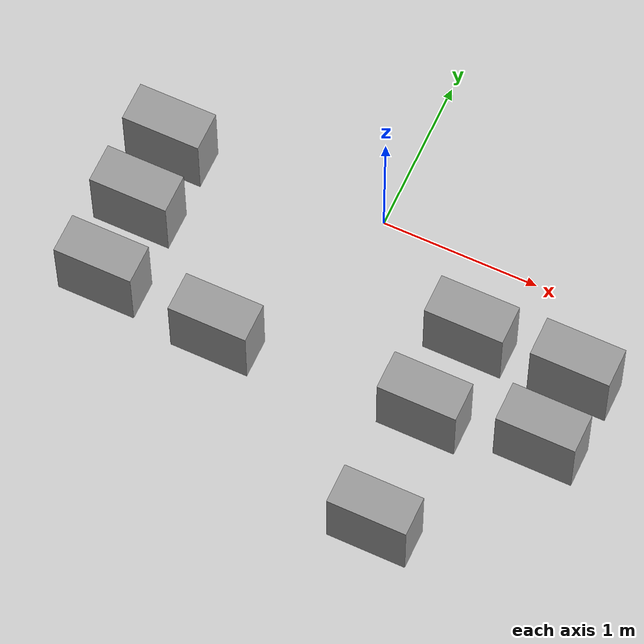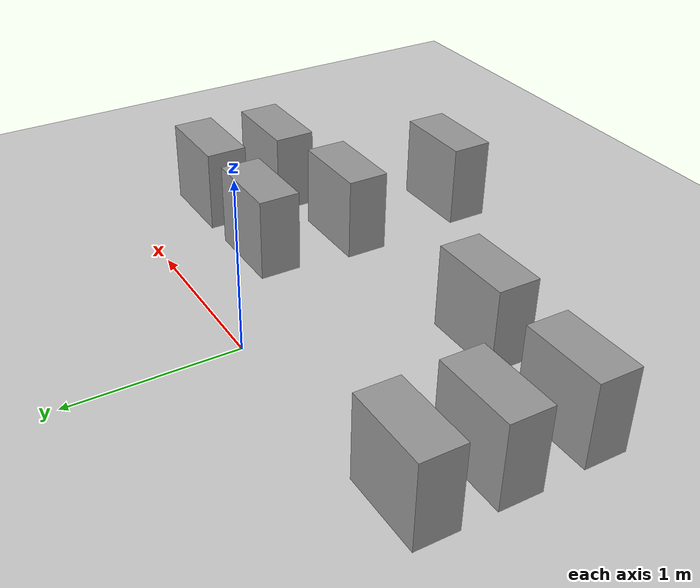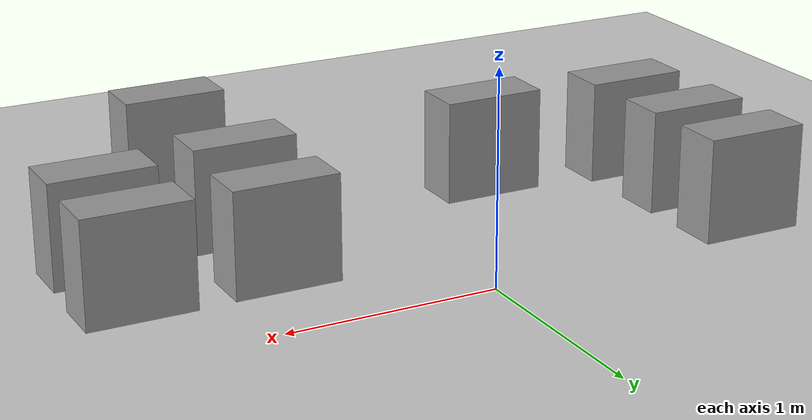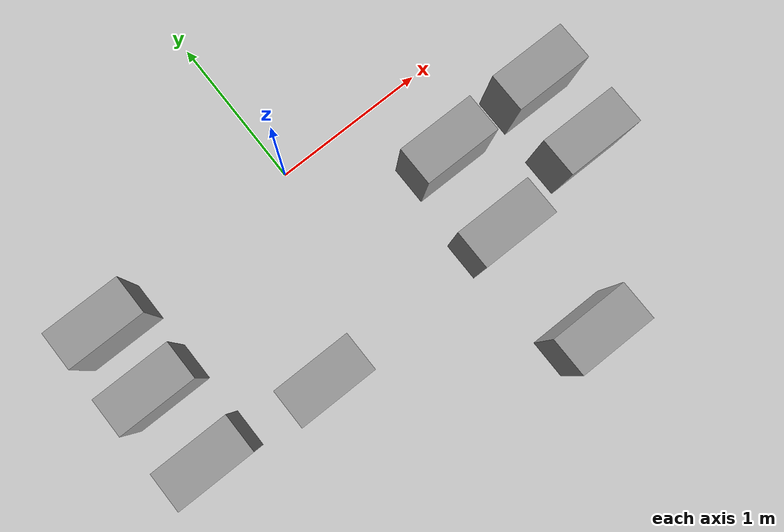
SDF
<sdf version="1.7">
 <world name="default">
  <model name="ground_plane">
   <static>1</static>
   <link name="link">
    <collision name="collision">
     <geometry><plane><normal>0 0 1</normal><size>100 100</size></plane></geometry>
     <surface>
      <contact><collide_bitmask>65535</collide_bitmask></contact>
      <friction><ode><mu>100</mu><mu2>50</mu2></ode></friction>
     </surface>
    </collision>
    <visual name="visual">
     <cast_shadows>0</cast_shadows>
     <geometry><plane><normal>0 0 1</normal><size>100 100</size></plane></geometry>
     <material>
      <script><uri>file://media/materials/scripts/gazebo.material</uri><name>Gazebo/Grey</name></script>
     </material>
    </visual>
   </link>
  </model>
  <model name="box_race_car_clone_20">
   <link name="link">
    <inertial>
     <mass>10</mass>
     <inertia>
      <ixx>0.260417</ixx>
      <ixy>0</ixy>
      <ixz>0</ixz>
      <iyy>0.416667</iyy>
      <iyz>0</iyz>
      <izz>0.260417</izz>
     </inertia>
    </inertial>
    <visual name="visual">
     <geometry><box><size>0.5 0.25 0.5</size></box></geometry>
     <material>
      <script><name>Gazebo/Grey</name><uri>file://media/materials/scripts/gazebo.material</uri></script>
      <shader type="pixel"><normal_map>__default__</normal_map></shader>
      <ambient>0.3 0.3 0.3 1</ambient>
      <diffuse>0.7 0.7 0.7 1</diffuse>
      <specular>0.01 0.01 0.01 1</specular>
      <emissive>0 0 0 1</emissive>
     </material>
    </visual>
    <collision name="collision">
     <geometry><box><size>0.5 0.25 0.5</size></box></geometry>
     <surface>
      <friction>
       <ode><mu>1</mu><mu2>1</mu2><fdir1>0 0 0</fdir1><slip1>0</slip1><slip2>0</slip2></ode>
       <torsional>
        <coefficient>1</coefficient>
        <patch_radius>0</patch_radius>
        <surface_radius>0</surface_radius>
        <use_patch_radius>1</use_patch_radius>
        <ode><slip>0</slip></ode>
       </torsional>
      </friction>
      <bounce><restitution_coefficient>0</restitution_coefficient><threshold>1e+06</threshold></bounce>
      <contact>
       <collide_without_contact>0</collide_without_contact>
       <collide_without_contact_bitmask>1</collide_without_contact_bitmask>
       <collide_bitmask>1</collide_bitmask>
       <ode>
        <soft_cfm>0</soft_cfm>
        <soft_erp>0.2</soft_erp>
        <kp>1e+13</kp>
        <kd>1</kd>
        <max_vel>0.01</max_vel>
        <min_depth>0</min_depth>
       </ode>
       <bullet>
        <split_impulse>1</split_impulse>
        <split_impulse_penetration_threshold>-0.01</split_impulse_penetration_threshold>
        <soft_cfm>0</soft_cfm>
        <soft_erp>0.2</soft_erp>
        <kp>1e+13</kp>
        <kd>1</kd>
       </bullet>
      </contact>
     </surface>
    </collision>
   </link>
   <static>0</static>
   <pose>-0.568656 -1.13771 0.25 0 -0 -2e-06</pose>
  </model>
  <model name="box_race_car_clone_20_clone_12">
   <link name="link">
    <inertial>
     <mass>10</mass>
     <inertia>
      <ixx>0.260417</ixx>
      <ixy>0</ixy>
      <ixz>0</ixz>
      <iyy>0.416667</iyy>
      <iyz>0</iyz>
      <izz>0.260417</izz>
     </inertia>
    </inertial>
    <visual name="visual">
     <geometry><box><size>0.5 0.25 0.5</size></box></geometry>
     <material>
      <script><name>Gazebo/Grey</name><uri>file://media/materials/scripts/gazebo.material</uri></script>
      <shader type="pixel"><normal_map>__default__</normal_map></shader>
      <ambient>0.3 0.3 0.3 1</ambient>
      <diffuse>0.7 0.7 0.7 1</diffuse>
      <specular>0.01 0.01 0.01 1</specular>
      <emissive>0 0 0 1</emissive>
     </material>
    </visual>
    <collision name="collision">
     <geometry><box><size>0.5 0.25 0.5</size></box></geometry>
     <surface>
      <friction>
       <ode><mu>1</mu><mu2>1</mu2><fdir1>0 0 0</fdir1><slip1>0</slip1><slip2>0</slip2></ode>
       <torsional>
        <coefficient>1</coefficient>
        <patch_radius>0</patch_radius>
        <surface_radius>0</surface_radius>
        <use_patch_radius>1</use_patch_radius>
        <ode><slip>0</slip></ode>
       </torsional>
      </friction>
      <bounce><restitution_coefficient>0</restitution_coefficient><threshold>1e+06</threshold></bounce>
      <contact>
       <collide_without_contact>0</collide_without_contact>
       <collide_without_contact_bitmask>1</collide_without_contact_bitmask>
       <collide_bitmask>1</collide_bitmask>
       <ode>
        <soft_cfm>0</soft_cfm>
        <soft_erp>0.2</soft_erp>
        <kp>1e+13</kp>
        <kd>1</kd>
        <max_vel>0.01</max_vel>
        <min_depth>0</min_depth>
       </ode>
       <bullet>
        <split_impulse>1</split_impulse>
        <split_impulse_penetration_threshold>-0.01</split_impulse_penetration_threshold>
        <soft_cfm>0</soft_cfm>
        <soft_erp>0.2</soft_erp>
        <kp>1e+13</kp>
        <kd>1</kd>
       </bullet>
      </contact>
     </surface>
    </collision>
   </link>
   <static>0</static>
   <pose>-1.36143 -0.11935 0.25 0 -0 -2e-06</pose>
  </model>
  <model name="box_race_car_clone_20_clone_13">
   <link name="link">
    <inertial>
     <mass>10</mass>
     <inertia>
      <ixx>0.260417</ixx>
      <ixy>0</ixy>
      <ixz>0</ixz>
      <iyy>0.416667</iyy>
      <iyz>0</iyz>
      <izz>0.260417</izz>
     </inertia>
    </inertial>
    <visual name="visual">
     <geometry><box><size>0.5 0.25 0.5</size></box></geometry>
     <material>
      <script><name>Gazebo/Grey</name><uri>file://media/materials/scripts/gazebo.material</uri></script>
      <shader type="pixel"><normal_map>__default__</normal_map></shader>
      <ambient>0.3 0.3 0.3 1</ambient>
      <diffuse>0.7 0.7 0.7 1</diffuse>
      <specular>0.01 0.01 0.01 1</specular>
      <emissive>0 0 0 1</emissive>
     </material>
    </visual>
    <collision name="collision">
     <geometry><box><size>0.5 0.25 0.5</size></box></geometry>
     <surface>
      <friction>
       <ode><mu>1</mu><mu2>1</mu2><fdir1>0 0 0</fdir1><slip1>0</slip1><slip2>0</slip2></ode>
       <torsional>
        <coefficient>1</coefficient>
        <patch_radius>0</patch_radius>
        <surface_radius>0</surface_radius>
        <use_patch_radius>1</use_patch_radius>
        <ode><slip>0</slip></ode>
       </torsional>
      </friction>
      <bounce><restitution_coefficient>0</restitution_coefficient><threshold>1e+06</threshold></bounce>
      <contact>
       <collide_without_contact>0</collide_without_contact>
       <collide_without_contact_bitmask>1</collide_without_contact_bitmask>
       <collide_bitmask>1</collide_bitmask>
       <ode>
        <soft_cfm>0</soft_cfm>
        <soft_erp>0.2</soft_erp>
        <kp>1e+13</kp>
        <kd>1</kd>
        <max_vel>0.01</max_vel>
        <min_depth>0</min_depth>
       </ode>
       <bullet>
        <split_impulse>1</split_impulse>
        <split_impulse_penetration_threshold>-0.01</split_impulse_penetration_threshold>
        <soft_cfm>0</soft_cfm>
        <soft_erp>0.2</soft_erp>
        <kp>1e+13</kp>
        <kd>1</kd>
       </bullet>
      </contact>
     </surface>
    </collision>
   </link>
   <static>0</static>
   <pose>-1.35625 -0.573354 0.25 0 -0 -2e-06</pose>
  </model>
  <model name="box_race_car_clone_20_clone_14">
   <link name="link">
    <inertial>
     <mass>10</mass>
     <inertia>
      <ixx>0.260417</ixx>
      <ixy>0</ixy>
      <ixz>0</ixz>
      <iyy>0.416667</iyy>
      <iyz>0</iyz>
      <izz>0.260417</izz>
     </inertia>
    </inertial>
    <visual name="visual">
     <geometry><box><size>0.5 0.25 0.5</size></box></geometry>
     <material>
      <script><name>Gazebo/Grey</name><uri>file://media/materials/scripts/gazebo.material</uri></script>
      <shader type="pixel"><normal_map>__default__</normal_map></shader>
      <ambient>0.3 0.3 0.3 1</ambient>
      <diffuse>0.7 0.7 0.7 1</diffuse>
      <specular>0.01 0.01 0.01 1</specular>
      <emissive>0 0 0 1</emissive>
     </material>
    </visual>
    <collision name="collision">
     <geometry><box><size>0.5 0.25 0.5</size></box></geometry>
     <surface>
      <friction>
       <ode><mu>1</mu><mu2>1</mu2><fdir1>0 0 0</fdir1><slip1>0</slip1><slip2>0</slip2></ode>
       <torsional>
        <coefficient>1</coefficient>
        <patch_radius>0</patch_radius>
        <surface_radius>0</surface_radius>
        <use_patch_radius>1</use_patch_radius>
        <ode><slip>0</slip></ode>
       </torsional>
      </friction>
      <bounce><restitution_coefficient>0</restitution_coefficient><threshold>1e+06</threshold></bounce>
      <contact>
       <collide_without_contact>0</collide_without_contact>
       <collide_without_contact_bitmask>1</collide_without_contact_bitmask>
       <collide_bitmask>1</collide_bitmask>
       <ode>
        <soft_cfm>0</soft_cfm>
        <soft_erp>0.2</soft_erp>
        <kp>1e+13</kp>
        <kd>1</kd>
        <max_vel>0.01</max_vel>
        <min_depth>0</min_depth>
       </ode>
       <bullet>
        <split_impulse>1</split_impulse>
        <split_impulse_penetration_threshold>-0.01</split_impulse_penetration_threshold>
        <soft_cfm>0</soft_cfm>
        <soft_erp>0.2</soft_erp>
        <kp>1e+13</kp>
        <kd>1</kd>
       </bullet>
      </contact>
     </surface>
    </collision>
   </link>
   <static>0</static>
   <pose>-1.34277 -1.07695 0.25 0 -0 -2e-06</pose>
  </model>
  <model name="box_race_car_clone_20_clone_20">
   <link name="link">
    <inertial>
     <mass>10</mass>
     <inertia>
      <ixx>0.260417</ixx>
      <ixy>0</ixy>
      <ixz>0</ixz>
      <iyy>0.416667</iyy>
      <iyz>0</iyz>
      <izz>0.260417</izz>
     </inertia>
    </inertial>
    <visual name="visual">
     <geometry><box><size>0.5 0.25 0.5</size></box></geometry>
     <material>
      <script><name>Gazebo/Grey</name><uri>file://media/materials/scripts/gazebo.material</uri></script>
      <shader type="pixel"><normal_map>__default__</normal_map></shader>
      <ambient>0.3 0.3 0.3 1</ambient>
      <diffuse>0.7 0.7 0.7 1</diffuse>
      <specular>0.01 0.01 0.01 1</specular>
      <emissive>0 0 0 1</emissive>
     </material>
    </visual>
    <collision name="collision">
     <geometry><box><size>0.5 0.25 0.5</size></box></geometry>
     <surface>
      <friction>
       <ode><mu>1</mu><mu2>1</mu2><fdir1>0 0 0</fdir1><slip1>0</slip1><slip2>0</slip2></ode>
       <torsional>
        <coefficient>1</coefficient>
        <patch_radius>0</patch_radius>
        <surface_radius>0</surface_radius>
        <use_patch_radius>1</use_patch_radius>
        <ode><slip>0</slip></ode>
       </torsional>
      </friction>
      <bounce><restitution_coefficient>0</restitution_coefficient><threshold>1e+06</threshold></bounce>
      <contact>
       <collide_without_contact>0</collide_without_contact>
       <collide_without_contact_bitmask>1</collide_without_contact_bitmask>
       <collide_bitmask>1</collide_bitmask>
       <ode>
        <soft_cfm>0</soft_cfm>
        <soft_erp>0.2</soft_erp>
        <kp>1e+13</kp>
        <kd>1</kd>
        <max_vel>0.01</max_vel>
        <min_depth>0</min_depth>
       </ode>
       <bullet>
        <split_impulse>1</split_impulse>
        <split_impulse_penetration_threshold>-0.01</split_impulse_penetration_threshold>
        <soft_cfm>0</soft_cfm>
        <soft_erp>0.2</soft_erp>
        <kp>1e+13</kp>
        <kd>1</kd>
       </bullet>
      </contact>
     </surface>
    </collision>
   </link>
   <static>0</static>
   <pose>0.7832 -1.85548 0.25 0 -0 -2e-06</pose>
  </model>
  <model name="box_race_car_clone_20_clone_21">
   <link name="link">
    <inertial>
     <mass>10</mass>
     <inertia>
      <ixx>0.260417</ixx>
      <ixy>0</ixy>
      <ixz>0</ixz>
      <iyy>0.416667</iyy>
      <iyz>0</iyz>
      <izz>0.260417</izz>
     </inertia>
    </inertial>
    <visual name="visual">
     <geometry><box><size>0.5 0.25 0.5</size></box></geometry>
     <material>
      <script><name>Gazebo/Grey</name><uri>file://media/materials/scripts/gazebo.material</uri></script>
      <shader type="pixel"><normal_map>__default__</normal_map></shader>
      <ambient>0.3 0.3 0.3 1</ambient>
      <diffuse>0.7 0.7 0.7 1</diffuse>
      <specular>0.01 0.01 0.01 1</specular>
      <emissive>0 0 0 1</emissive>
     </material>
    </visual>
    <collision name="collision">
     <geometry><box><size>0.5 0.25 0.5</size></box></geometry>
     <surface>
      <friction>
       <ode><mu>1</mu><mu2>1</mu2><fdir1>0 0 0</fdir1><slip1>0</slip1><slip2>0</slip2></ode>
       <torsional>
        <coefficient>1</coefficient>
        <patch_radius>0</patch_radius>
        <surface_radius>0</surface_radius>
        <use_patch_radius>1</use_patch_radius>
        <ode><slip>0</slip></ode>
       </torsional>
      </friction>
      <bounce><restitution_coefficient>0</restitution_coefficient><threshold>1e+06</threshold></bounce>
      <contact>
       <collide_without_contact>0</collide_without_contact>
       <collide_without_contact_bitmask>1</collide_without_contact_bitmask>
       <collide_bitmask>1</collide_bitmask>
       <ode>
        <soft_cfm>0</soft_cfm>
        <soft_erp>0.2</soft_erp>
        <kp>1e+13</kp>
        <kd>1</kd>
        <max_vel>0.01</max_vel>
        <min_depth>0</min_depth>
       </ode>
       <bullet>
        <split_impulse>1</split_impulse>
        <split_impulse_penetration_threshold>-0.01</split_impulse_penetration_threshold>
        <soft_cfm>0</soft_cfm>
        <soft_erp>0.2</soft_erp>
        <kp>1e+13</kp>
        <kd>1</kd>
       </bullet>
      </contact>
     </surface>
    </collision>
   </link>
   <static>0</static>
   <pose>0.748668 -1.08471 0.25 0 -0 -2e-06</pose>
  </model>
  <model name="box_race_car_clone_20_clone_22">
   <link name="link">
    <inertial>
     <mass>10</mass>
     <inertia>
      <ixx>0.260417</ixx>
      <ixy>0</ixy>
      <ixz>0</ixz>
      <iyy>0.416667</iyy>
      <iyz>0</iyz>
      <izz>0.260417</izz>
     </inertia>
    </inertial>
    <visual name="visual">
     <geometry><box><size>0.5 0.25 0.5</size></box></geometry>
     <material>
      <script><name>Gazebo/Grey</name><uri>file://media/materials/scripts/gazebo.material</uri></script>
      <shader type="pixel"><normal_map>__default__</normal_map></shader>
      <ambient>0.3 0.3 0.3 1</ambient>
      <diffuse>0.7 0.7 0.7 1</diffuse>
      <specular>0.01 0.01 0.01 1</specular>
      <emissive>0 0 0 1</emissive>
     </material>
    </visual>
    <collision name="collision">
     <geometry><box><size>0.5 0.25 0.5</size></box></geometry>
     <surface>
      <friction>
       <ode><mu>1</mu><mu2>1</mu2><fdir1>0 0 0</fdir1><slip1>0</slip1><slip2>0</slip2></ode>
       <torsional>
        <coefficient>1</coefficient>
        <patch_radius>0</patch_radius>
        <surface_radius>0</surface_radius>
        <use_patch_radius>1</use_patch_radius>
        <ode><slip>0</slip></ode>
       </torsional>
      </friction>
      <bounce><restitution_coefficient>0</restitution_coefficient><threshold>1e+06</threshold></bounce>
      <contact>
       <collide_without_contact>0</collide_without_contact>
       <collide_without_contact_bitmask>1</collide_without_contact_bitmask>
       <collide_bitmask>1</collide_bitmask>
       <ode>
        <soft_cfm>0</soft_cfm>
        <soft_erp>0.2</soft_erp>
        <kp>1e+13</kp>
        <kd>1</kd>
        <max_vel>0.01</max_vel>
        <min_depth>0</min_depth>
       </ode>
       <bullet>
        <split_impulse>1</split_impulse>
        <split_impulse_penetration_threshold>-0.01</split_impulse_penetration_threshold>
        <soft_cfm>0</soft_cfm>
        <soft_erp>0.2</soft_erp>
        <kp>1e+13</kp>
        <kd>1</kd>
       </bullet>
      </contact>
     </surface>
    </collision>
   </link>
   <static>0</static>
   <pose>0.796226 -0.523789 0.25 0 -0 -2e-06</pose>
  </model>
  <model name="box_race_car_clone_20_clone_34">
   <link name="link">
    <inertial>
     <mass>10</mass>
     <inertia>
      <ixx>0.260417</ixx>
      <ixy>0</ixy>
      <ixz>0</ixz>
      <iyy>0.416667</iyy>
      <iyz>0</iyz>
      <izz>0.260417</izz>
     </inertia>
    </inertial>
    <visual name="visual">
     <geometry><box><size>0.5 0.25 0.5</size></box></geometry>
     <material>
      <script><name>Gazebo/Grey</name><uri>file://media/materials/scripts/gazebo.material</uri></script>
      <shader type="pixel"><normal_map>__default__</normal_map></shader>
      <ambient>0.3 0.3 0.3 1</ambient>
      <diffuse>0.7 0.7 0.7 1</diffuse>
      <specular>0.01 0.01 0.01 1</specular>
      <emissive>0 0 0 1</emissive>
     </material>
    </visual>
    <collision name="collision">
     <geometry><box><size>0.5 0.25 0.5</size></box></geometry>
     <surface>
      <friction>
       <ode><mu>1</mu><mu2>1</mu2><fdir1>0 0 0</fdir1><slip1>0</slip1><slip2>0</slip2></ode>
       <torsional>
        <coefficient>1</coefficient>
        <patch_radius>0</patch_radius>
        <surface_radius>0</surface_radius>
        <use_patch_radius>1</use_patch_radius>
        <ode><slip>0</slip></ode>
       </torsional>
      </friction>
      <bounce><restitution_coefficient>0</restitution_coefficient><threshold>1e+06</threshold></bounce>
      <contact>
       <collide_without_contact>0</collide_without_contact>
       <collide_without_contact_bitmask>1</collide_without_contact_bitmask>
       <collide_bitmask>1</collide_bitmask>
       <ode>
        <soft_cfm>0</soft_cfm>
        <soft_erp>0.2</soft_erp>
        <kp>1e+13</kp>
        <kd>1</kd>
        <max_vel>0.01</max_vel>
        <min_depth>0</min_depth>
       </ode>
       <bullet>
        <split_impulse>1</split_impulse>
        <split_impulse_penetration_threshold>-0.01</split_impulse_penetration_threshold>
        <soft_cfm>0</soft_cfm>
        <soft_erp>0.2</soft_erp>
        <kp>1e+13</kp>
        <kd>1</kd>
       </bullet>
      </contact>
     </surface>
    </collision>
   </link>
   <static>0</static>
   <pose>1.46767 -0.51609 0.25 0 -0 -2e-06</pose>
  </model>
  <model name="box_race_car_clone_20_clone_35">
   <link name="link">
    <inertial>
     <mass>10</mass>
     <inertia>
      <ixx>0.260417</ixx>
      <ixy>0</ixy>
      <ixz>0</ixz>
      <iyy>0.416667</iyy>
      <iyz>0</iyz>
      <izz>0.260417</izz>
     </inertia>
    </inertial>
    <visual name="visual">
     <geometry><box><size>0.5 0.25 0.5</size></box></geometry>
     <material>
      <script><name>Gazebo/Grey</name><uri>file://media/materials/scripts/gazebo.material</uri></script>
      <shader type="pixel"><normal_map>__default__</normal_map></shader>
      <ambient>0.3 0.3 0.3 1</ambient>
      <diffuse>0.7 0.7 0.7 1</diffuse>
      <specular>0.01 0.01 0.01 1</specular>
      <emissive>0 0 0 1</emissive>
     </material>
    </visual>
    <collision name="collision">
     <geometry><box><size>0.5 0.25 0.5</size></box></geometry>
     <surface>
      <friction>
       <ode><mu>1</mu><mu2>1</mu2><fdir1>0 0 0</fdir1><slip1>0</slip1><slip2>0</slip2></ode>
       <torsional>
        <coefficient>1</coefficient>
        <patch_radius>0</patch_radius>
        <surface_radius>0</surface_radius>
        <use_patch_radius>1</use_patch_radius>
        <ode><slip>0</slip></ode>
       </torsional>
      </friction>
      <bounce><restitution_coefficient>0</restitution_coefficient><threshold>1e+06</threshold></bounce>
      <contact>
       <collide_without_contact>0</collide_without_contact>
       <collide_without_contact_bitmask>1</collide_without_contact_bitmask>
       <collide_bitmask>1</collide_bitmask>
       <ode>
        <soft_cfm>0</soft_cfm>
        <soft_erp>0.2</soft_erp>
        <kp>1e+13</kp>
        <kd>1</kd>
        <max_vel>0.01</max_vel>
        <min_depth>0</min_depth>
       </ode>
       <bullet>
        <split_impulse>1</split_impulse>
        <split_impulse_penetration_threshold>-0.01</split_impulse_penetration_threshold>
        <soft_cfm>0</soft_cfm>
        <soft_erp>0.2</soft_erp>
        <kp>1e+13</kp>
        <kd>1</kd>
       </bullet>
      </contact>
     </surface>
    </collision>
   </link>
   <static>0</static>
   <pose>1.45283 -0.979415 0.25 0 -0 -2e-06</pose>
  </model>
 </world>
</sdf>
